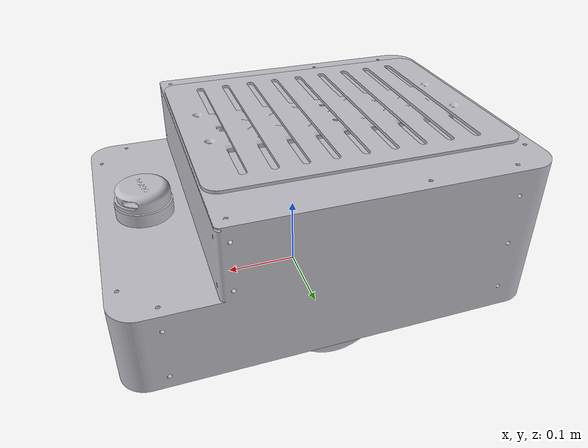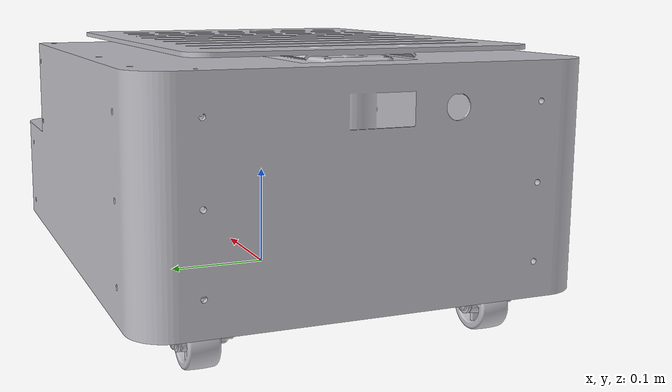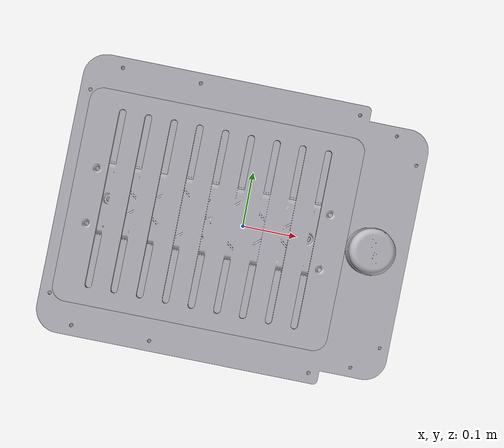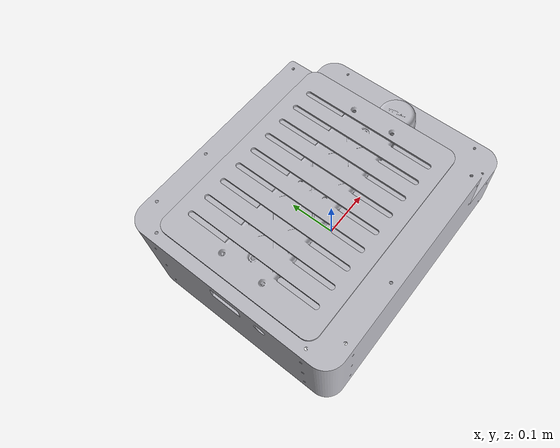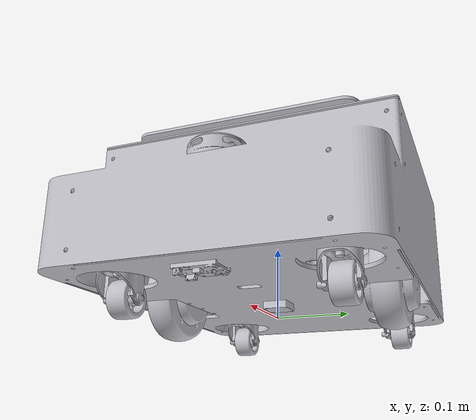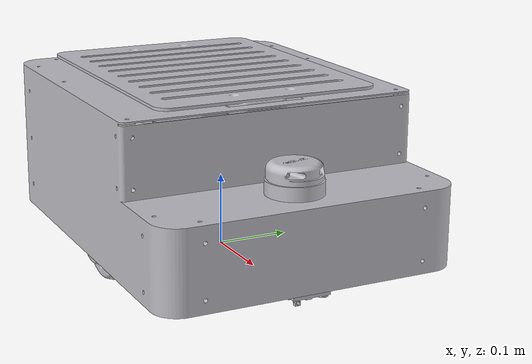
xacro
<?xml version="1.0"?>
<robot xmlns:xacro="http://ros.org/wiki/xacro" name="cubo">
    <xacro:include filename="$(find cubo_description)/urdf/common/insert_inertia.urdf.xacro"/>
    <xacro:include filename="$(find cubo_description)/urdf/cubo.xacro"/>

    <xacro:arg name="is_sim" default="false"/>
    <xacro:arg name="namespace" default=""/>

    <xacro:insert_robot namespace="$(arg namespace)" is_sim="$(arg is_sim)"/>
</robot>

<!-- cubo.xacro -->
<robot name="cubo" xmlns:xacro="http://www.ros.org/wiki/xacro">
  <xacro:macro name="insert_robot" params="namespace is_sim">
    <xacro:include filename="$(find cubo_description)/urdf/materials.xacro" />
    <xacro:include filename="$(find cubo_description)/urdf/cubo.trans" />
    <xacro:include filename="$(find cubo_description)/urdf/cubo.gazebo" />
    <xacro:include filename="$(find cubo_description)/urdf/cubo_ros2_control.urdf.xacro" />

    <link name="fixed_base"/>

    <link name="base_link">
      <inertial>
          <origin xyz="-0.004 0.000 0.041" rpy="0 0 0"/>
          <mass value="28.14"/>
          <inertia ixx="0.363967" ixy="0.002789" ixz="0.001543" iyy="0.570563" iyz="-0.000279" izz="0.788194"/>
      </inertial>
      <visual>
        <origin xyz="0 0 0" rpy="0 0 0"/>
        <geometry>
          <mesh filename="package://cubo_description/meshes/base_link.stl" scale="0.001 0.001 0.001"/>
        </geometry>
        <material name="cubo_silver"/>
      </visual>
      <collision>
        <origin xyz="0 0 0" rpy="0 0 0"/>
        <geometry>
          <mesh filename="package://cubo_description/meshes/base_link.stl" scale="0.001 0.001 0.001"/>
        </geometry>
      </collision>
    </link>

    <link name="lift">
      <inertial>
        <origin xyz="-9.18631856758714e-05 0.146812629912676 0.08710089925322241" rpy="0 0 0"/>
        <mass value="10.250168665374813"/>
        <inertia ixx="0.119518" iyy="0.038664" izz="0.145642" ixy="5e-05" iyz="0.000414" ixz="-4e-06"/>
      </inertial>
      <visual>
        <origin xyz="0 0 0" rpy="0 0 0"/>
        <geometry>
          <mesh filename="package://cubo_description/meshes/lift.stl" scale="0.001 0.001 0.001"/>
        </geometry>
        <material name="cubo_silver"/>
      </visual>
      <collision>
        <origin xyz="0 0 0" rpy="0 0 0"/>
        <geometry>
          <mesh filename="package://cubo_description/meshes/lift.stl" scale="0.001 0.001 0.001"/>
        </geometry>
      </collision>
    </link>

    <link name="wheel_l">
      <inertial>
        <origin xyz="0.03563639731480209 -2.88928873216952e-10 3.761487369115246e-07" rpy="0 0 0"/>
        <mass value="2.1569185522943797"/>
        <inertia ixx="0.005268" iyy="0.003293" izz="0.003293" ixy="0.0" iyz="-0.0" ixz="-0.0"/>
      </inertial>
      <visual>
        <origin xyz="0 0 0" rpy="0 0 0"/>
        <geometry>
          <mesh filename="package://cubo_description/meshes/wheel_l.stl" scale="0.001 0.001 0.001"/>
        </geometry>
        <material name="cubo_silver"/>
      </visual>
      <collision>
        <origin xyz="0 0 0" rpy="0 0 0"/>
        <geometry>
          <mesh filename="package://cubo_description/meshes/wheel_l.stl" scale="0.001 0.001 0.001"/>
        </geometry>
      </collision>
    </link>

    <link name="wheel_r">
      <inertial>
        <origin xyz="-0.035636378976420025 2.889289472655107e-10 3.761487369115246e-07" rpy="0 0 0"/>
        <mass value="2.1569185522943797"/>
        <inertia ixx="0.005268" iyy="0.003293" izz="0.003293" ixy="0.0" iyz="0.0" ixz="0.0"/>
      </inertial>
      <visual>
        <origin xyz="0 0 0" rpy="0 0 0"/>
        <geometry>
          <mesh filename="package://cubo_description/meshes/wheel_r.stl" scale="0.001 0.001 0.001"/>
        </geometry>
        <material name="cubo_silver"/>
      </visual>
      <collision>
        <origin xyz="0 0 0" rpy="0 0 0"/>
        <geometry>
          <mesh filename="package://cubo_description/meshes/wheel_r.stl" scale="0.001 0.001 0.001"/>
        </geometry>
      </collision>
    </link>

    <link name="c_a_1">
      <inertial>
        <origin xyz="-0.0007867395902900198 0.005806933510111967 -0.014688033462714347" rpy="0 0 0"/>
        <mass value="0.22400375430742672"/>
        <inertia ixx="8.6e-05" iyy="9e-05" izz="9.9e-05" ixy="3e-06" iyz="2.2e-05" ixz="-4e-06"/>
      </inertial>
      <visual>
        <origin xyz="0 0 0" rpy="0 0 0"/>
        <geometry>
          <mesh filename="package://cubo_description/meshes/c_a_1.stl" scale="0.001 0.001 0.001"/>
        </geometry>
        <material name="cubo_silver"/>
      </visual>
      <collision>
        <origin xyz="0 0 0" rpy="0 0 0"/>
        <geometry>
          <mesh filename="package://cubo_description/meshes/c_a_1.stl" scale="0.001 0.001 0.001"/>
        </geometry>
      </collision>
    </link>

    <link name="c_b_1">
      <inertial>
        <origin xyz="-0.0007869921219839648 0.005807186041805051 -0.014717502629345933" rpy="0 0 0"/>
        <mass value="0.22400375430742672"/>
        <inertia ixx="8.6e-05" iyy="9e-05" izz="9.9e-05" ixy="3e-06" iyz="2.2e-05" ixz="-4e-06"/>
      </inertial>
      <visual>
        <origin xyz="0 0 0" rpy="0 0 0"/>
        <geometry>
          <mesh filename="package://cubo_description/meshes/c_b_1.stl" scale="0.001 0.001 0.001"/>
        </geometry>
        <material name="cubo_silver"/>
      </visual>
      <collision>
        <origin xyz="0 0 0" rpy="0 0 0"/>
        <geometry>
          <mesh filename="package://cubo_description/meshes/c_b_1.stl" scale="0.001 0.001 0.001"/>
        </geometry>
      </collision>
    </link>

    <link name="c_c_1">
      <inertial>
        <origin xyz="-0.0007869921219829934 0.005807186041805051 -0.014717502629346332" rpy="0 0 0"/>
        <mass value="0.22400375430742672"/>
        <inertia ixx="8.6e-05" iyy="9e-05" izz="9.9e-05" ixy="3e-06" iyz="2.2e-05" ixz="-4e-06"/>
      </inertial>
      <visual>
        <origin xyz="0 0 0" rpy="0 0 0"/>
        <geometry>
          <mesh filename="package://cubo_description/meshes/c_c_1.stl" scale="0.001 0.001 0.001"/>
        </geometry>
        <material name="cubo_silver"/>
      </visual>
      <collision>
        <origin xyz="0 0 0" rpy="0 0 0"/>
        <geometry>
          <mesh filename="package://cubo_description/meshes/c_c_1.stl" scale="0.001 0.001 0.001"/>
        </geometry>
      </collision>
    </link>

    <link name="c_d_1">
      <inertial>
        <origin xyz="-0.0007869921219839648 0.005807186041806051 -0.014717502629346225" rpy="0 0 0"/>
        <mass value="0.22400375430742672"/>
        <inertia ixx="8.6e-05" iyy="9e-05" izz="9.9e-05" ixy="3e-06" iyz="2.2e-05" ixz="-4e-06"/>
      </inertial>
      <visual>
        <origin xyz="0 0 0" rpy="0 0 0"/>
        <geometry>
          <mesh filename="package://cubo_description/meshes/c_d_1.stl" scale="0.001 0.001 0.001"/>
        </geometry>
        <material name="cubo_silver"/>
      </visual>
      <collision>
        <origin xyz="0 0 0" rpy="0 0 0"/>
        <geometry>
          <mesh filename="package://cubo_description/meshes/c_d_1.stl" scale="0.001 0.001 0.001"/>
        </geometry>
      </collision>
    </link>

    <link name="c_a_2">
      <inertial>
        <origin xyz="-0.01705573764882845 -0.10044925673105691 0.12455011353256065" rpy="0 0 0"/>
        <mass value="0.31305714263215006"/>
        <inertia ixx="0.000109" iyy="7.2e-05" izz="7.2e-05" ixy="0.0" iyz="-0.0" ixz="0.0"/>
      </inertial>
      <visual>
        <origin xyz="0 0 0" rpy="0 0 0"/>
        <geometry>
          <mesh filename="package://cubo_description/meshes/c_a_2.stl" scale="0.001 0.001 0.001"/>
        </geometry>
        <material name="cubo_silver"/>
      </visual>
      <collision>
        <origin xyz="0 0 0" rpy="0 0 0"/>
        <geometry>
          <mesh filename="package://cubo_description/meshes/c_a_2.stl" scale="0.001 0.001 0.001"/>
        </geometry>
      </collision>
    </link>

    <link name="c_b_2">
      <inertial>
        <origin xyz="-0.020084990180522316 0.1774999958006361 0.1274996443659291" rpy="0 0 0"/>
        <mass value="0.31305714263215006"/>
        <inertia ixx="0.000109" iyy="7.2e-05" izz="7.2e-05" ixy="0.0" iyz="-0.0" ixz="0.0"/>
      </inertial>
      <visual>
        <origin xyz="0 0 0" rpy="0 0 0"/>
        <geometry>
          <mesh filename="package://cubo_description/meshes/c_b_2.stl" scale="0.001 0.001 0.001"/>
        </geometry>
        <material name="cubo_silver"/>
      </visual>
      <collision>
        <origin xyz="0 0 0" rpy="0 0 0"/>
        <geometry>
          <mesh filename="package://cubo_description/meshes/c_b_2.stl" scale="0.001 0.001 0.001"/>
        </geometry>
      </collision>
    </link>

    <link name="c_c_2">
      <inertial>
        <origin xyz="-0.02008499018052147 -0.09850000419936367 -0.2505003556340713" rpy="0 0 0"/>
        <mass value="0.31305714263215006"/>
        <inertia ixx="0.000109" iyy="7.2e-05" izz="7.2e-05" ixy="0.0" iyz="-0.0" ixz="0.0"/>
      </inertial>
      <visual>
        <origin xyz="0 0 0" rpy="0 0 0"/>
        <geometry>
          <mesh filename="package://cubo_description/meshes/c_c_2.stl" scale="0.001 0.001 0.001"/>
        </geometry>
        <material name="cubo_silver"/>
      </visual>
      <collision>
        <origin xyz="0 0 0" rpy="0 0 0"/>
        <geometry>
          <mesh filename="package://cubo_description/meshes/c_c_2.stl" scale="0.001 0.001 0.001"/>
        </geometry>
      </collision>
    </link>

    <link name="c_d_2">
      <inertial>
        <origin xyz="-0.02008499018052251 0.17750000419936318 -0.2505003462855625" rpy="0 0 0"/>
        <mass value="0.31305714263215006"/>
        <inertia ixx="0.000109" iyy="7.2e-05" izz="7.2e-05" ixy="-0.0" iyz="-0.0" ixz="-0.0"/>
      </inertial>
      <visual>
        <origin xyz="0 0 0" rpy="0 0 0"/>
        <geometry>
          <mesh filename="package://cubo_description/meshes/c_d_2.stl" scale="0.001 0.001 0.001"/>
        </geometry>
        <material name="cubo_silver"/>
      </visual>
      <collision>
        <origin xyz="0 0 0" rpy="0 0 0"/>
        <geometry>
          <mesh filename="package://cubo_description/meshes/c_d_2.stl" scale="0.001 0.001 0.001"/>
        </geometry>
      </collision>
    </link>

    <link name="lidar">
      <inertial>
        <origin xyz="0.02060264842860216 -0.019925485695754058 0.01908561854882558" rpy="0 0 0"/>
        <mass value="1.280064180483868"/>
        <inertia ixx="0.000598" iyy="0.000598" izz="0.000847" ixy="-0.0" iyz="-1.5e-05" ixz="4e-06"/>
      </inertial>
      <visual>
        <origin xyz="0 0 0" rpy="0 0 0"/>
        <geometry>
          <mesh filename="package://cubo_description/meshes/lidar.stl" scale="0.001 0.001 0.001"/>
        </geometry>
        <material name="cubo_silver"/>
      </visual>
      <collision>
        <origin xyz="0 0 0" rpy="0 0 0"/>
        <geometry>
          <mesh filename="package://cubo_description/meshes/lidar.stl" scale="0.001 0.001 0.001"/>
        </geometry>
      </collision>
    </link>

    <link name="imu">
      <inertial>
        <origin xyz="0.014500009169191006 0.014499999999991284 -0.004965921509042865" rpy="0 0 0"/>
        <mass value="0.09329704159627104"/>
        <inertia ixx="1e-05" iyy="1e-05" izz="1.8e-05" ixy="0.0" iyz="-0.0" ixz="0.0"/>
      </inertial>
      <visual>
        <origin xyz="0 0 0" rpy="0 0 0"/>
        <geometry>
          <mesh filename="package://cubo_description/meshes/imu.stl" scale="0.001 0.001 0.001"/>
        </geometry>
        <material name="cubo_silver"/>
      </visual>
      <collision>
        <origin xyz="0 0 0" rpy="0 0 0"/>
        <geometry>
          <mesh filename="package://cubo_description/meshes/imu.stl" scale="0.001 0.001 0.001"/>
        </geometry>
      </collision>
    </link>

    <link name="camera">
      <inertial>
        <origin xyz="-0.00808908239378873 -0.02274137583535496 0.0005909330101719415" rpy="0 0 0"/>
        <mass value="0.07461958066040388"/>
        <inertia ixx="9e-06" iyy="1.6e-05" izz="2.5e-05" ixy="0.0" iyz="-0.0" ixz="-0.0"/>
      </inertial>
      <visual>
        <origin xyz="0 0 0" rpy="0 0 0"/>
        <geometry>
          <mesh filename="package://cubo_description/meshes/camera.stl" scale="0.001 0.001 0.001"/>
        </geometry>
        <material name="cubo_silver"/>
      </visual>
      <collision>
        <origin xyz="0 0 0" rpy="0 0 0"/>
        <geometry>
          <mesh filename="package://cubo_description/meshes/camera.stl" scale="0.001 0.001 0.001"/>
        </geometry>
      </collision>
    </link>

    <joint name="fixed_base_joint" type="fixed">
      <origin xyz="0 0 0.022" rpy="0 0 1.5708"/>
      <parent link="fixed_base"/>
      <child link="base_link"/>
      <axis xyz="0.0 0.0 0.0"/>
    </joint>

    <joint name="lift_joint" type="prismatic">
      <origin xyz="0.0005 -0.096 0.1105" rpy="0 0 0"/>
      <parent link="base_link"/>
      <child link="lift"/>
      <axis xyz="0.0 0.0 1.0"/>
      <limit upper="0.06" lower="0.0" effort="100" velocity="100"/>
    </joint>

    <joint name="wheel_joint_a" type="continuous">
      <origin xyz="0.126 0.0 0.019" rpy="0 0 0"/>
      <parent link="base_link"/>
      <child link="wheel_l"/>
      <axis xyz="1.0 0.0 0.0"/>
    </joint>

    <joint name="wheel_joint_b" type="continuous">
      <origin xyz="-0.124 0.0 0.019" rpy="0 0 0"/>
      <parent link="base_link"/>
      <child link="wheel_r"/>
      <axis xyz="1.0 0.0 0.0"/>
    </joint>

    <joint name="c_joint_a_1" type="continuous">
      <origin xyz="-0.13895 -0.18705 0.021664" rpy="0 0 0"/>
      <parent link="base_link"/>
      <child link="c_a_1"/>
      <axis xyz="0.0 -0.0 -1.0"/>
    </joint>

    <joint name="c_joint_b_1" type="continuous">
      <origin xyz="0.139 -0.19 0.018664" rpy="0 0 0"/>
      <parent link="base_link"/>
      <child link="c_b_1"/>
      <axis xyz="0.0 0.0 -1.0"/>
    </joint>

    <joint name="c_joint_c_1" type="continuous">
      <origin xyz="-0.137 0.188 0.018664" rpy="0 0 0"/>
      <parent link="base_link"/>
      <child link="c_c_1"/>
      <axis xyz="0.0 0.0 -1.0"/>
    </joint>

    <joint name="c_joint_d_1" type="continuous">
      <origin xyz="0.139 0.188 0.018664" rpy="0 0 0"/>
      <parent link="base_link"/>
      <child link="c_d_1"/>
      <axis xyz="-0.0 0.0 -1.0"/>
    </joint>

    <joint name="c_joint_a_2" type="fixed">
      <origin xyz="0.017056 0.122949 -0.16327" rpy="0 0 0"/>
      <parent link="c_a_1"/>
      <child link="c_a_2"/>
      <axis xyz="-1.0 -0.0 -0.0"/>
    </joint>

    <joint name="c_joint_b_2" type="fixed">
      <origin xyz="0.020085 -0.155 -0.166249" rpy="0 0 0"/>
      <parent link="c_b_1"/>
      <child link="c_b_2"/>
      <axis xyz="-1.0 -0.0 -0.0"/>
    </joint>

    <joint name="c_joint_c_2" type="fixed">
      <origin xyz="0.020085 0.121 0.211751" rpy="0 0 0"/>
      <parent link="c_c_1"/>
      <child link="c_c_2"/>
      <axis xyz="-1.0 -0.0 -0.0"/>
    </joint>

    <joint name="c_joint_d_2" type="fixed">
      <origin xyz="0.020085 -0.155 0.211751" rpy="0 0 0"/>
      <parent link="c_d_1"/>
      <child link="c_d_2"/>
      <axis xyz="-1.0 -0.0 0.0"/>
    </joint>

    <joint name="lidar_joint" type="fixed">
      <origin xyz="-0.01975 -0.186 0.109" rpy="0 0 0"/>
      <parent link="base_link"/>
      <child link="lidar"/>
    </joint>

    <joint name="imu_joint" type="fixed">
      <origin xyz="-0.0135 -0.0145 0.0" rpy="0 0 0"/>
      <parent link="base_link"/>
      <child link="imu"/>
    </joint>

    <joint name="camera_joint" type="fixed">
      <origin xyz="0.0084 -0.215 -0.01" rpy="0 0 0"/>
      <parent link="base_link"/>
      <child link="camera"/>
    </joint>

    <xacro:if value="${is_sim}">
        <xacro:insert_gazebo namespace="${namespace}"/>
    </xacro:if>
    <xacro:insert_ros2_control name="cubo" is_sim="${is_sim}"/>

  </xacro:macro>

</robot>
